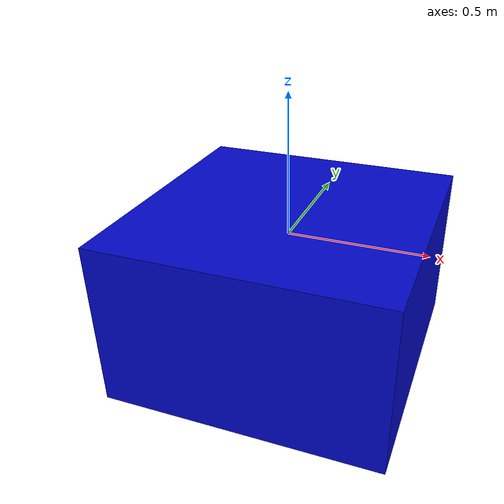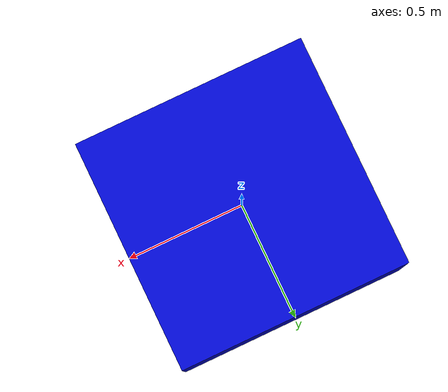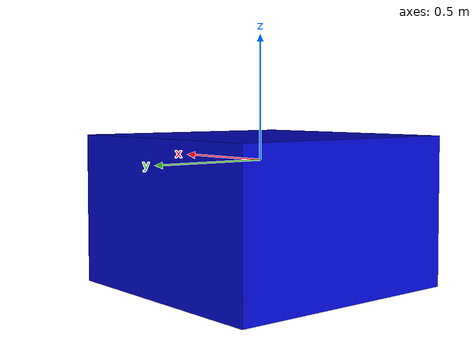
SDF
<?xml version="1.0" ?>
<sdf version="1.5">
  <model name="concrete_cube_1m">
    <static>true</static>
    <link name="link">
      <collision name="concrete_cube_1m">
        <pose>-0.0 0 0.3 0 0 0</pose>
        <geometry>
          <box>
            <size>1.0 1.0 0.6</size>
          </box>
        </geometry>
      </collision>
      <visual name="concrete_cube_1m_visual">
        <geometry>
          <mesh>
            <uri>model://concrete_cube_1m/meshes/concrete_cube_1m_blue.dae</uri>
          </mesh>
        </geometry>
      </visual>
    </link>
  </model>
</sdf>
